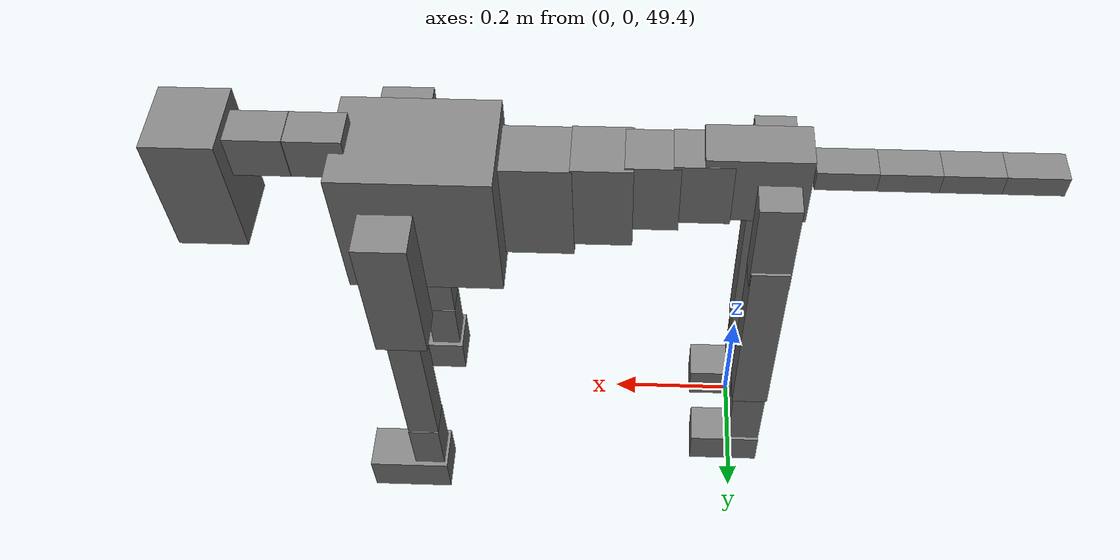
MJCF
<mujoco model="dog">

    <default>
        <joint armature="0.02" stiffness="1" damping="0.2" limited="true"/>
        <geom condim="3" friction="1 0.05 0.05" margin="0.01"/>
        <motor ctrllimited="true" ctrlrange="-1.0 1.0" forcelimited="true" gear="50"/>
    </default>

    <compiler inertiafromgeom="true" angle="radian"/>

    <option timestep="0.016" iterations="50" tolerance="1e-10" solver="Newton" jacobian="dense" cone="pyramidal"/>

    <size nconmax="20000" njmax="60000" nstack="5000000"/>
    <visual>
        <map force="0.1" zfar="30"/>
        <rgba haze="0.15 0.25 0.35 1"/>
        <quality shadowsize="2048"/>
        <global offwidth="800" offheight="800"/>
    </visual>

    <asset>
        <texture type="skybox" builtin="gradient" rgb1="0.3 0.5 0.7" rgb2="0 0 0" width="512" height="512"/>
        <texture name="texplane" type="2d" builtin="checker" rgb1=".2 .3 .4" rgb2=".1 0.15 0.2" width="512" height="512"
                 mark="cross" markrgb=".8 .8 .8"/>
        <texture name="texgeom" type="cube" builtin="flat" mark="cross" width="127" height="1278" rgb1="0.8 0.6 0.4"
                 rgb2="0.8 0.6 0.4" markrgb="1 1 1" random="0.01"/>

        <material name="matplane" reflectance="0.3" texture="texplane" texrepeat="1 1" texuniform="true"/>
        <material name="matgeom" texture="texgeom" texuniform="true" rgba="0.8 0.6 .4 1"/>
    </asset>

    <worldbody>
        <geom name="floor" pos="0 0 0" size="0 0 .25" type="plane" material="matplane" condim="3"/>

        <light directional="false" diffuse=".2 .2 .2" specular="0 0 0" pos="0 0 5" dir="0 0 -1" castshadow="false"/>
        <light mode="targetbodycom" target="torso" directional="false" diffuse=".8 .8 .8" specular="0.3 0.3 0.3"
               pos="0 0 4.0" dir="0 0 -1"/>

        <body name="root" pos="0 0 50">
            <freejoint name="root_1"/>
            <geom type="box" pos="0 0 -0.02" size="0.0774  0.0358  0.063" density="2030"/>

            <body name="spine1" pos="0.054 0 0">
                <joint name="spine1_y" axis="0 1 0" range="0 0.7" limited="true"/>
                <geom type="box" pos="0.02375 0 -0.03" size="0.04375  0.0375  0.05985" density="2030"/>

                <body name="spine2" pos="0.0612 0 0">
                    <joint name="spine2_y" axis="0 1 0" range="-0.15 0.15" limited="true"/>
                    <geom type="box" pos="0.03555  0  -0.04" size="0.04055  0.039  0.06615" density="2030"/>

                    <body name="spine3" pos="0.0730 0 0">
                        <joint name="spine3_y" axis="0 1 0" range="-0.15 0.15" limited="true"/>
                        <geom type="box" pos="0.03555  0  -0.057" size="0.04555  0.0445  0.081" density="2030"/>

                        <body name="spine4" pos="0.0780 0 0">
                            <joint name="spine4_y" axis="0 1 0" range="-0.15 0.15" limited="true"/>
                            <geom type="box" pos="0.05265  0  -0.07" size="0.05265  0.045  0.09135" density="2030"/>

                            <body name="torso" pos="0.1082 0 0">
                                <joint name="torso_y" axis="0 1 0" range="-0.15 0.15" limited="true"/>
                                <geom type="box" pos="0.11925  0  -0.085" size="0.11925  0.085  0.11745"
                                      density="2030"/>

                                <body name="neck1" pos="0.2160  0   0.0180">
                                    <joint name="neck1_y" axis="0 1 0" range="-1.2  -1" limited="true"/>
                                    <geom type="box" pos="0.0423  0  0" size="0.0423  0.03  0.036" density="2325"/>

                                    <body name="neck2" pos="0.0853  0  0">
                                        <joint name="neck2_y" axis="0 1 0" range="0.1  0" limited="true"/>
                                        <geom type="box" pos="0.0423  0  0" size="0.0423  0.03  0.036" density="2325"/>

                                        <body name="head" pos="0.0853  0  0">
                                            <joint name="head_y" axis="0 1 0" range="-0.3  -0.2" limited="true"/>
                                            <geom type="box" pos="0.0531  0  -0.055" size="0.0531  0.06  0.1044"
                                                  density="4030"/>

                                        </body>
                                    </body>
                                </body>

                                <body name="front_shoulder" pos="0.156  0   -0.0480">
                                    <joint name="front_shoulder_y" axis="0 1 0" range="-1 1.5" limited="true"/>
                                    <geom type="box" pos="0 0.13 -0.0940" size="0.0400  0.0342  0.1206" density="1158"/>
                                    <geom type="box" pos="0 -0.13 -0.0940" size="0.0400  0.0342  0.1206"
                                          density="1158"/>

                                    <body name="front_elbow" pos="0  0  -0.1880">
                                        <joint name="front_elbow_y" axis="0 1 0" range="-2 0" limited="true"/>
                                        <geom type="box" pos="0 0.13 -0.1508" size="0.0257  0.0263  0.1508"
                                              density="1081"/>
                                        <geom type="box" pos="0 -0.13 -0.1508" size="0.0257  0.0263  0.1508"
                                              density="1081"/>

                                        <body name="front_wrist" pos="0  0  -0.3015">
                                            <joint name="front_wrist_y" axis="0 1 0" range="-0.2 0" limited="true"/>
                                            <geom type="box" pos="0 0.13 -0.0516" size="0.0258  0.0287  0.0648"
                                                  density="1664"/>
                                            <geom type="box" pos="0 -0.13 -0.0516" size="0.0258  0.0287  0.0648"
                                                  density="1664"/>

                                            <body name="front_finger_end" pos="0  0  -0.1033">
                                                <joint name="front_finger_y" axis="0 1 0" range="-0.4 1"
                                                       limited="true"/>
                                                <geom type="box" pos="0.0373  0.13  -0.0211"
                                                      size="0.0683  0.0373  0.0361" density="1515"/>
                                                <geom type="box" pos="0.0373  -0.13  -0.0211"
                                                      size="0.0683  0.0373  0.0361" density="1515"/>

                                            </body>

                                        </body>
                                    </body>
                                </body>

                            </body>
                        </body>
                    </body>
                </body>
            </body>

            <body name="back_hip" pos="-0.03 0 -0.018">
                <joint name="back_hip_y" axis="0 1 0" range="-1.5 0.3" limited="true"/>
                <geom type="box" pos="0 0.07 -0.0656" size="0.0311  0.0244  0.0884" density="1154"/>
                <geom type="box" pos="0 -0.07 -0.0656" size="0.0311  0.0244  0.0884" density="1154"/>

                <body name="back_knee" pos="0  0  -0.1312">
                    <joint name="back_knee_y" axis="0 1 0" range="0 2.8" limited="true"/>
                    <geom type="box" pos="0 0.07 -0.1613" size="0.0297  0.0293  0.1768" density="1227"/>
                    <geom type="box" pos="0 -0.07 -0.1613" size="0.0297  0.0293  0.1768" density="1227"/>

                    <body name="back_ankle" pos="0  0  -0.3225">
                        <joint name="back_ankle_y" axis="0 1 0" range="-2.2 0" limited="true"/>
                        <geom type="box" pos="0 0.07 -0.0777" size="0.0272  0.0272  0.0889" density="1284"/>
                        <geom type="box" pos="0 -0.07 -0.0777" size="0.0272  0.0272  0.0889" density="1284"/>

                        <body name="back_toe_end" pos="0  0  -0.1554">
                            <joint name="back_toe_y" axis="0 1 0" range="-0.4 1" limited="true"/>
                            <geom type="box" pos="0.0328  0.07  -0.0186" size="0.0602  0.0328  0.0336" density="1515"/>
                            <geom type="box" pos="0.0328  -0.07  -0.0186" size="0.0602  0.0328  0.0336" density="1515"/>

                        </body>
                    </body>
                </body>
            </body>

            <body name="tail1" pos="-0.074 0 -0.006">
                <joint name="tail1_y" axis="0 1 0" range="-0.2 0.2" limited="true"/>
                <geom type="box" pos="-0.0536  0  0" size="0.045  0.025  0.0175" density="1587"/>

                <body name="tail2" pos="-0.09 0 0">
                    <joint name="tail2_y" axis="0 1 0" range="-0.2 0.2" limited="true"/>
                    <geom type="box" pos="-0.0536  0  0" size="0.045  0.025  0.0175" density="1587"/>

                    <body name="tail3" pos="-0.09 0 0">
                        <joint name="tail3_y" axis="0 1 0" range="-0.2 0.2" limited="true"/>
                        <geom type="box" pos="-0.0536  0  0" size="0.045  0.025  0.0175" density="1587"/>

                        <body name="tail4" pos="-0.09 0 0">
                            <joint name="tail4_y" axis="0 1 0" range="-0.2 0.2" limited="true"/>
                            <geom type="box" pos="-0.0536  0  0" size="0.045  0.025  0.0175" density="1587"/>

                        </body>
                    </body>
                </body>
            </body>
        </body>
    </worldbody>

    <actuator>
        <motor joint="spine1_y" forcerange="-150 150     "/>
        <motor joint="spine2_y" forcerange="-150 150     "/>
        <motor joint="spine3_y" forcerange="-150 150     "/>
        <motor joint="spine4_y" forcerange="-150 150     "/>
        <motor joint="torso_y" forcerange="-150 150     "/>
        <motor joint="neck1_y" forcerange="-100 100       "/>
        <motor joint="neck2_y" forcerange="-100 100       "/>
        <motor joint="head_y" forcerange="-150 150       "/>
        <motor joint="front_shoulder_y" forcerange="-176.40 151.30"/>
        <motor joint="front_elbow_y" forcerange="-156.43 134.95"/>
        <motor joint="front_wrist_y" forcerange="-88.78 140.73"/>
        <motor joint="front_finger_y" forcerange="-72.56 86.23"/>
        <motor joint="back_hip_y" forcerange="-319.25 206.32"/>
        <motor joint="back_knee_y" forcerange="-356.09 270.22"/>
        <motor joint="back_angle_y" forcerange="-190.40 144.95"/>
        <motor joint="back_toe_y" forcerange="-77.58 105.14"/>
        <motor joint="tail1_y" forcerange="-50 50     "/>
        <motor joint="tail2_y" forcerange="-50 50     "/>
        <motor joint="tail3_y" forcerange="-50 50     "/>
        <motor joint="tail4_y" forcerange="-50 50     "/>
    </actuator>
</mujoco>
